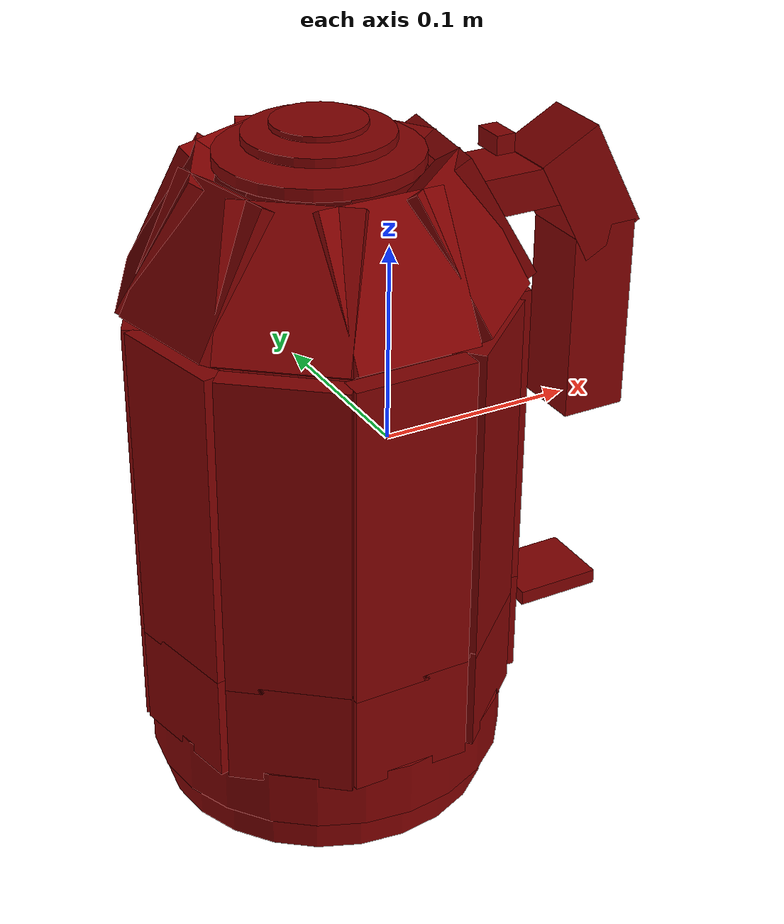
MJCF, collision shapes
<?xml version='1.0' encoding='UTF-8'?>
<mujoco model="model">
  <option timestep="0.002" gravity="0.0 0.0 -9.81"/>
  <compiler angle="radian"/>
  <asset>
    <mesh file="visuals/button_lid.obj" name="button_lid_vis"/>
    <mesh file="visuals/Body001.obj" name="Body001_vis"/>
    <mesh file="visuals/kettle_main.obj" name="kettle_main_vis"/>
    <mesh file="visuals/kettle_main_Clear.obj" name="kettle_main_Clear_vis"/>
    <mesh file="visuals/lid.obj" name="lid_vis"/>
    <mesh file="visuals/switch.obj" name="switch_vis"/>
    <texture file="visuals/T_BC001.png" name="Body001_material" type="2d"/>
    <material name="Body001_material" rgba="1 1 1 1.0" texture="Body001_material" shininess="0.5" specular="0.3103448502657381"/>
    <texture file="visuals/T_BC001.png" name="kettle_main_material" type="2d"/>
    <material name="kettle_main_material" rgba="1 1 1 1.0" texture="kettle_main_material" shininess="0.5" specular="0.3103448502657381"/>
    <texture file="visuals/T_BC001.png" name="button_lid_material" type="2d"/>
    <material name="button_lid_material" rgba="1 1 1 1.0" texture="button_lid_material" shininess="0.5" specular="0.3103448502657381"/>
    <texture file="visuals/T_BC001.png" name="kettle_main_Clear_material" type="2d"/>
    <material name="kettle_main_Clear_material" rgba="1 1 1 0.2881355881690979" texture="kettle_main_Clear_material" shininess="0.5" specular="0.3103448502657381"/>
    <texture file="visuals/T_BC001.png" name="lid_material" type="2d"/>
    <material name="lid_material" rgba="1 1 1 1.0" texture="lid_material" shininess="0.5" specular="0.3103448502657381"/>
    <texture file="visuals/T_BC001.png" name="switch_material" type="2d"/>
    <material name="switch_material" rgba="1 1 1 1.0" texture="switch_material" shininess="0.5" specular="0.3103448502657381"/>
  </asset>
  <default>
    <default class="visual">
      <geom conaffinity="0" contype="0" group="1" type="mesh"/>
    </default>
    <default class="collision">
      <geom group="0" rgba="0.5 0 0 0.5"/>
    </default>
    <default class="spawn">
      <geom group="0" rgba="1 1 1 0.5" contype="0" conaffinity="0"/>
      <site group="0" rgba="1 1 1 0.5"/>
    </default>
    <default class="region">
      <geom group="1" conaffinity="0" contype="0" rgba="0 1 0 0" mass="0"/>
    </default>
  </default>
  <worldbody>
    <body>
      <body name="object">
        <geom mesh="Body001_vis" type="mesh" solimp="0.998 0.998 0.001" solref="0.001 1" friction="0.95 0.3 0.1" class="visual" material="Body001_material"/>
        <geom type="cylinder" pos="-0.03538152202963829 0.0010952461743727326 -0.1637687385082245" size="0.08254653215408325 0.009571613743901253" quat="1.0 0.0 0.0 0.0" class="collision"/>
        <body name="kettle_main">
          <geom mesh="kettle_main_vis" type="mesh" solimp="0.998 0.998 0.001" solref="0.001 1" friction="0.95 0.3 0.1" class="visual" material="kettle_main_material"/>
          <geom type="cylinder" pos="-0.03547241538763046 -0.000652501592412591 -0.1391078531742096" size="0.08874797821044922 0.014229065738618374" quat="1.0 0.0 0.0 0.0" class="collision"/>
          <geom type="box" pos="-0.03471153974533081 -0.08220654726028442 -0.10265162587165833" size="0.02977779135107994 0.005581058096140623 0.026802511885762215" quat="1.0 0.0 0.0 0.0" class="collision"/>
          <geom type="box" pos="-0.03471154719591141 -0.06748807430267334 0.11778312921524048" size="0.02977782115340233 0.00558107253164053 0.03503568843007088" quat="0.9659258127212524 -0.2588191032409668 -0.0 0.0" class="collision"/>
          <geom type="box" pos="-0.07724742591381073 -0.053342461585998535 0.11778312921524048" size="0.02977782115340233 0.00558107253164053 0.03503568843007088" quat="0.9112226366996765 -0.2441614419221878 0.0858633741736412 -0.3204464316368103" class="collision"/>
          <geom type="box" pos="-0.08646006882190704 -0.06482115387916565 -0.10265162587165833" size="0.02977781742811203 0.005581064615398645 0.026802511885762215" quat="0.9433671832084656 0.0 -0.0 -0.33175045251846313" class="collision"/>
          <geom type="box" pos="-0.11624616384506226 -0.017508337274193764 -0.10265162587165833" size="0.02977781742811203 0.005581064615398645 0.026802511885762215" quat="0.7745359539985657 0.0 -0.0 -0.6325298547744751" class="collision"/>
          <geom type="box" pos="-0.10182451456785202 -0.014567404985427856 0.11778312921524048" size="0.02977782115340233 0.00558107253164053 0.03503568843007088" quat="0.748144268989563 -0.20046466588974 0.16371077299118042 -0.6109769344329834" class="collision"/>
          <geom type="box" pos="-0.09615639597177505 0.03055177628993988 0.11778312921524048" size="0.02977782115340233 0.00558107253164053 0.03503568843007088" quat="0.49888408184051514 -0.13367560505867004 0.2216261476278305 -0.8271199464797974" class="collision"/>
          <geom type="box" pos="-0.10917527973651886 0.037417806684970856 -0.10265162587165833" size="0.02977781742811203 0.005581064615398645 0.026802511885762215" quat="0.5164828300476074 0.0 -0.0 -0.8562975525856018" class="collision"/>
          <geom type="box" pos="-0.0681149959564209 0.07575635612010956 -0.10265162587165833" size="0.02977781742811203 0.005581064615398645 0.026802511885762215" quat="0.19312620162963867 0.0 -0.0 -0.9811739325523376" class="collision"/>
          <geom type="box" pos="-0.06253695487976074 0.06213580071926117 0.11778312921524048" size="0.02977782115340233 0.00558107253164053 0.03503568843007088" quat="0.18654558062553406 -0.04998474940657616 0.25394657254219055 -0.9477412104606628" class="collision"/>
          <geom type="box" pos="-0.015080209821462631 0.06434522569179535 0.11778312921524048" size="0.02977782115340233 0.00558107253164053 0.03503568843007088" quat="0.15858937799930573 -0.04249390959739685 -0.2553068697452545 0.952817976474762" class="collision"/>
          <geom type="box" pos="-0.010312728583812714 0.07827021181583405 -0.10265162587165833" size="0.02977781742811203 0.005581064615398645 0.026802511885762215" quat="0.1641838103532791 0.0 0.0 0.986429750919342" class="collision"/>
          <geom type="box" pos="0.03392260521650314 0.04363854229450226 -0.10265162587165833" size="0.02977781742811203 0.005581064615398645 0.026802511885762215" quat="0.4910895526409149 0.0 0.0 0.8711090683937073" class="collision"/>
          <geom type="box" pos="0.021329693496227264 0.036019328981637955 0.11778312921524048" size="0.02977782115340233 0.00558107253164053 0.03503568843007088" quat="0.47435635328292847 -0.12710344791412354 -0.22545963525772095 0.8414266109466553" class="collision"/>
          <geom type="box" pos="0.03706934303045273 -0.005954106338322163 0.11778312921524048" size="0.02977782115340233 0.00558107253164053 0.03503568843007088" quat="0.7183259129524231 -0.19247493147850037 -0.1730339527130127 0.6457712650299072" class="collision"/>
          <geom type="box" pos="0.05170482397079468 -0.007515400182455778 -0.10265162587165833" size="0.02977781742811203 0.005581064615398645 0.026802511885762215" quat="0.7436657547950745 0.0 0.0 0.6685516238212585" class="collision"/>
          <geom type="box" pos="0.019679777324199677 -0.06063393875956535 -0.10265162587165833" size="0.02977781742811203 0.005581064615398645 0.026802511885762215" quat="0.9346433877944946 0.0 0.0 0.355586439371109" class="collision"/>
          <geom type="box" pos="0.00989646464586258 -0.04963749647140503 0.11778312921524048" size="0.02977782115340233 0.00558107253164053 0.03503568843007088" quat="0.9027961492538452 -0.24190358817577362 -0.09203260391950607 0.3434702157974243" class="collision"/>
          <geom class="collision" type="box" pos="0.0663488358259201 -0.000382203608751297 0.12102849036455154" size="0.02952895313501358 0.01757529005408287 0.00980944000184536" quat="1.0 0.0 0.0 0.0" name="handle_2"/>
          <geom class="collision" type="box" pos="0.10790809243917465 -0.000382203608751297 0.04569841921329498" size="0.016733692958950996 0.01757529005408287 0.049610935151576996" quat="1.0 0.0 0.0 0.0" name="handle_main"/>
          <geom class="collision" type="box" pos="0.09872564673423767 -0.000382203608751297 0.11302942037582397" size="0.02952895313501358 0.01757529005408287 0.016728650778532028" quat="0.8562593460083008 0.0 0.5165461897850037 0.0" name="handle_1"/>
          <body name="button_lid">
            <joint axis="0.0 0.0 -1.0" pos="0.05610485374927521 0.00011815689504146576 0.14201116561889648" limited="true" name="button_lid_joint" range="0.0 0.003" type="slide" damping="1" frictionloss="1" armature=".01" stiffness="1" springref="-0.5"/>
            <geom mesh="button_lid_vis" type="mesh" solimp="0.998 0.998 0.001" solref="0.001 1" friction="0.95 0.3 0.1" class="visual" material="button_lid_material"/>
            <geom class="collision" type="box" pos="0.056178849190473557 0.0005087144672870636 0.14188969135284424" size="0.0048311809077858925 0.008083097636699677 0.0046598599292337894" quat="1.0 0.0 0.0 0.0" name="button_lid_main"/>
          </body>
          <body name="kettle_main_Clear">
            <geom mesh="kettle_main_Clear_vis" type="mesh" solimp="0.998 0.998 0.001" solref="0.001 1" friction="0.95 0.3 0.1" class="visual" material="kettle_main_Clear_material"/>
            <geom type="box" pos="-0.03471153974533081 -0.08220654726028442 0.0014674090780317783" size="0.02977781742811203 0.005581064615398645 0.08027462661266327" quat="1.0 0.0 0.0 0.0" class="collision"/>
            <geom type="box" pos="-0.08646006882190704 -0.06482115387916565 0.0014674090780317783" size="0.02977781742811203 0.005581064615398645 0.08027459681034088" quat="0.9433671832084656 0.0 -0.0 -0.33175045251846313" class="collision"/>
            <geom type="box" pos="-0.11624616384506226 -0.017508337274193764 0.0014674090780317783" size="0.02977781742811203 0.005581064615398645 0.08027459681034088" quat="0.7745359539985657 0.0 -0.0 -0.6325298547744751" class="collision"/>
            <geom type="box" pos="-0.10917527973651886 0.037417806684970856 0.0014674090780317783" size="0.02977781742811203 0.005581064615398645 0.08027459681034088" quat="0.5164828300476074 0.0 -0.0 -0.8562975525856018" class="collision"/>
            <geom type="box" pos="-0.0681149959564209 0.07575635612010956 0.0014674090780317783" size="0.02977781742811203 0.005581064615398645 0.08027459681034088" quat="0.19312620162963867 0.0 -0.0 -0.9811739325523376" class="collision"/>
            <geom type="box" pos="-0.010312728583812714 0.07827021181583405 0.0014674090780317783" size="0.02977781742811203 0.005581064615398645 0.08027459681034088" quat="0.1641838103532791 0.0 0.0 0.986429750919342" class="collision"/>
            <geom type="box" pos="0.03392260521650314 0.04363854229450226 0.0014674090780317783" size="0.02977781742811203 0.005581064615398645 0.08027459681034088" quat="0.4910895526409149 0.0 0.0 0.8711090683937073" class="collision"/>
            <geom type="box" pos="0.05170482397079468 -0.007515400182455778 0.0014674090780317783" size="0.02977781742811203 0.005581064615398645 0.08027459681034088" quat="0.7436657547950745 0.0 0.0 0.6685516238212585" class="collision"/>
            <geom type="box" pos="0.019679777324199677 -0.06063393875956535 0.0014674090780317783" size="0.02977781742811203 0.005581064615398645 0.08027459681034088" quat="0.9346433877944946 0.0 0.0 0.355586439371109" class="collision"/>
          </body>
          <body name="lid">
            <joint axis="0.0 1.0 0.0" pos="0.026003453880548477 -5.4329633712768555e-05 0.1463363915681839" limited="true" name="lid_joint" range="0.0 1.5707963267948966" type="hinge" damping="1" frictionloss="0.1" armature=".01" stiffness="0.05" springref="-6"/>
            <geom mesh="lid_vis" type="mesh" solimp="0.998 0.998 0.001" solref="0.001 1" friction="0.95 0.3 0.1" class="visual" material="lid_material"/>
            <geom class="collision" type="cylinder" pos="-0.035547804087400436 0.0003185271052643657 0.15125049650669098" size="0.047698937356472015 0.002917469246312976" quat="1.0 0.0 0.0 0.0" name="lid_main"/>
            <geom class="collision" type="cylinder" pos="-0.035547804087400436 0.0003185271052643657 0.16044364869594574" size="0.0346982479095459 0.002122292062267661" quat="1.0 0.0 0.0 0.0" name="lid_1"/>
            <geom class="collision" type="cylinder" pos="-0.035547804087400436 0.0003185271052643657 0.166156604886055" size="0.022068731486797333 0.0013498172629624605" quat="1.0 0.0 0.0 0.0" name="lid_2"/>
          </body>
          <body name="switch">
            <joint axis="0.0 0.0 -1.0" pos="0.08839569240808487 8.405954577028751e-05 -0.10657630115747452" limited="true" name="switch_joint" range="0.0 0.01" type="slide" damping="50" frictionloss="1" armature=".01" stiffness="1" springref="-0.25"/>
            <geom mesh="switch_vis" type="mesh" solimp="0.998 0.998 0.001" solref="0.001 1" friction="0.95 0.3 0.1" class="visual" material="switch_material"/>
            <geom class="collision" type="box" pos="0.09348791092634201 0.00018739677034318447 -0.10674447566270828" size="0.02226397953927517 0.01842275820672512 0.0038377416785806417" quat="1.0 0.0 0.0 0.0" name="switch_main"/>
          </body>
        </body>
        <geom class="region" name="reg_main" type="box" pos="0.0 -4.163336342344337e-16 -9.53674295089968e-09" size="0.12377255952358246 0.08694655990600586 0.1736222187280655"/>
      </body>
    </body>
  </worldbody>
  <actuator>
    <motor name="button_lid_joint_actuator" joint="button_lid_joint" gear="50"/>
    <motor name="lid_joint_actuator" joint="lid_joint" gear="0.5"/>
    <motor name="switch_joint_actuator" joint="switch_joint" gear="50"/>
  </actuator>
</mujoco>
